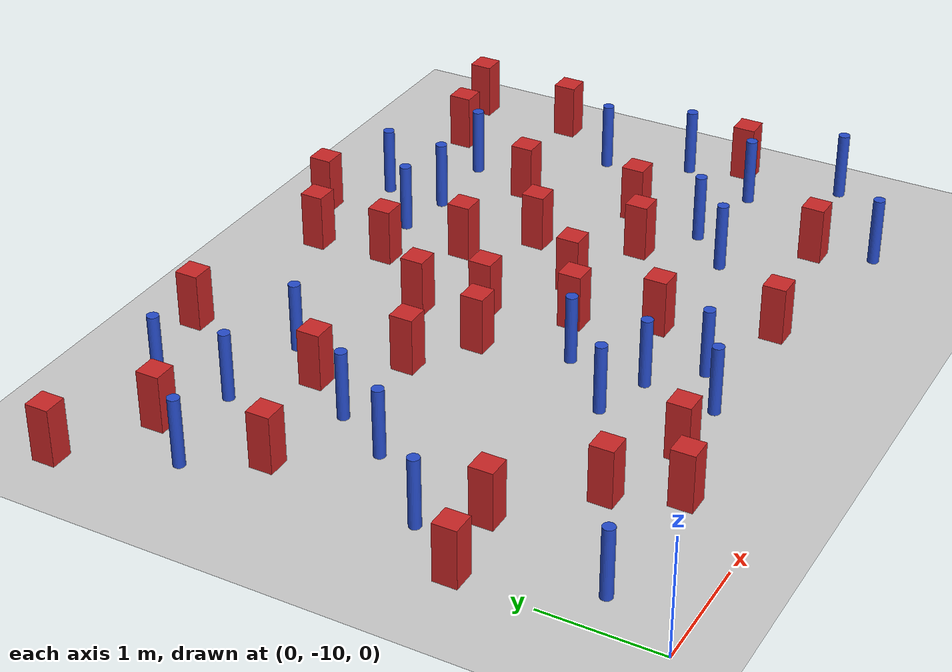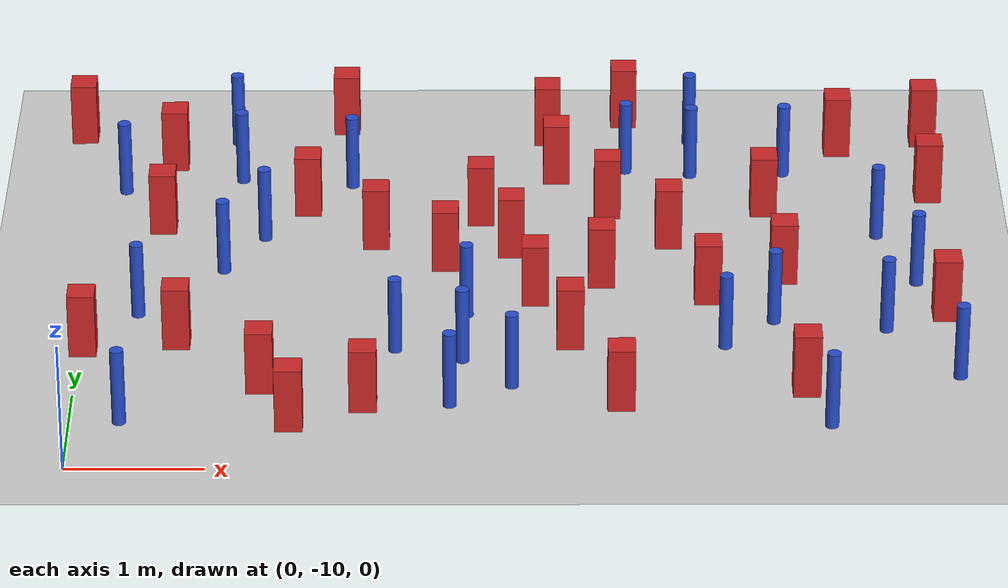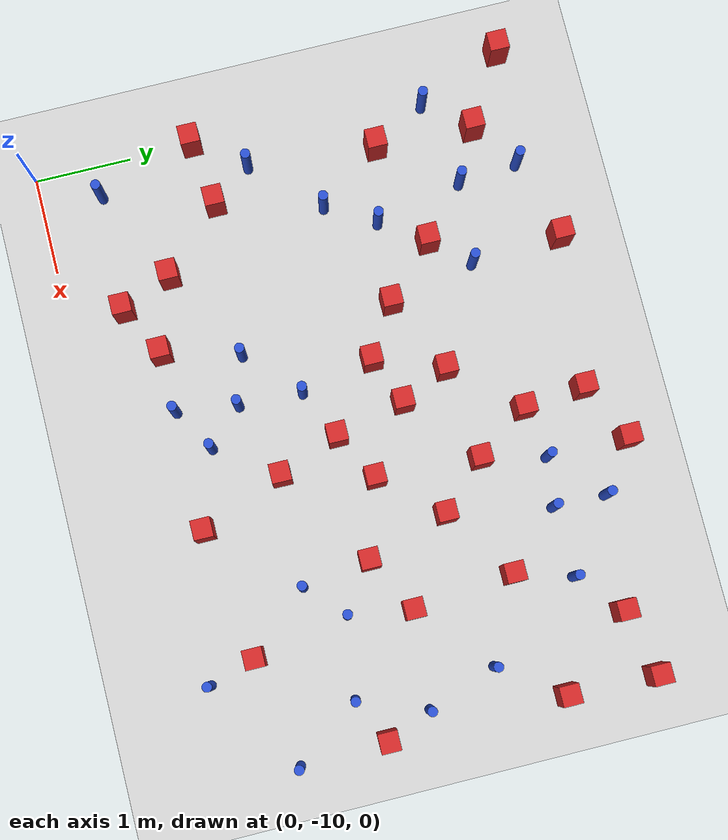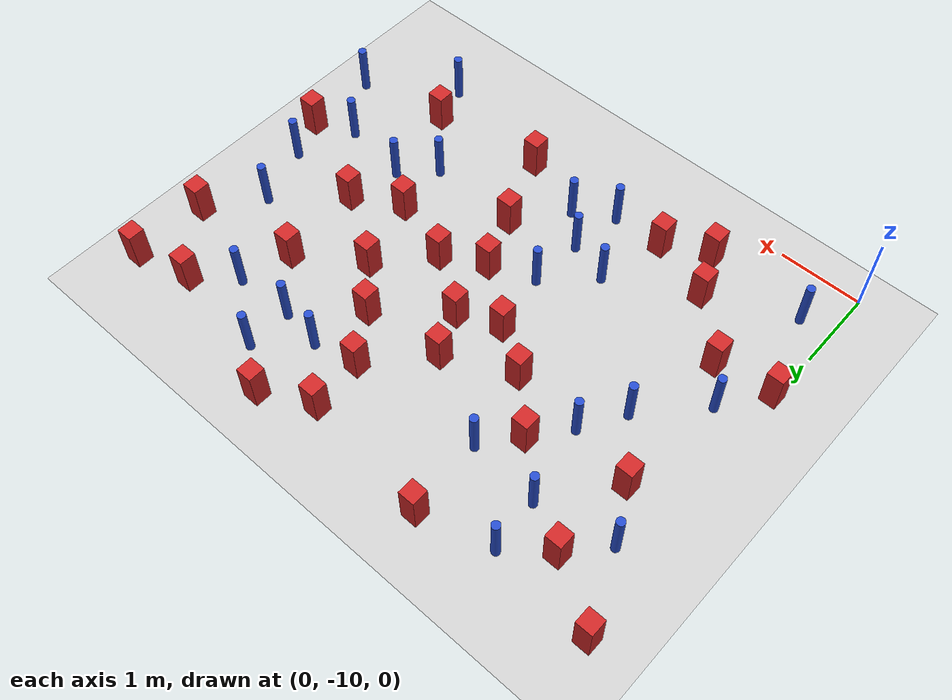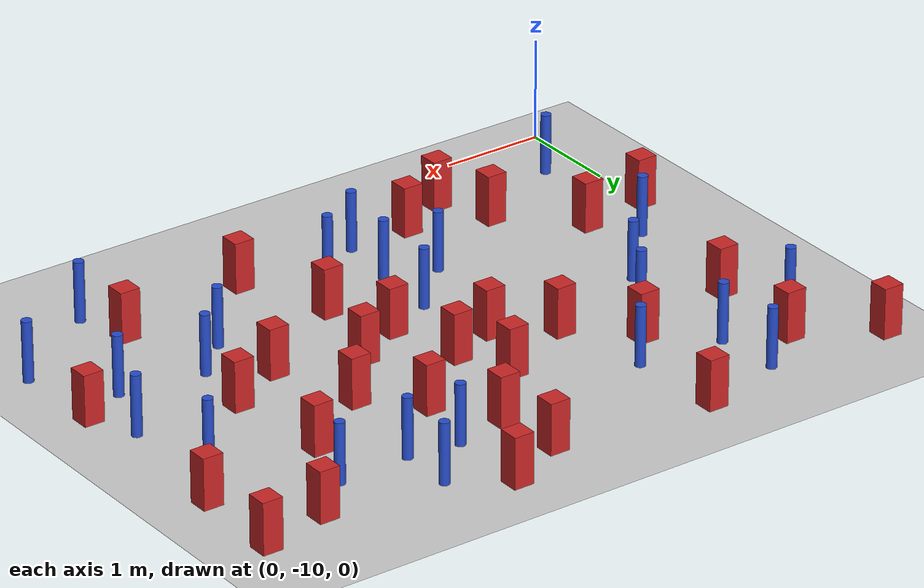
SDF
<sdf version="1.6">
 <world name="default">
  <model name="ground_plane">
   <static>1</static>
   <link name="link">
    <collision name="collision">
     <geometry><plane><normal>0 0 1</normal><size>100 100</size></plane></geometry>
     <surface><friction><ode><mu>100</mu><mu2>50</mu2></ode></friction></surface>
    </collision>
    <visual name="visual">
     <cast_shadows>0</cast_shadows>
     <geometry><plane><normal>0 0 1</normal><size>100 100</size></plane></geometry>
     <material>
      <ambient>1.0 1.0 1.0 1.0</ambient>
      <diffuse>0.8 0.8 0.8 1.0</diffuse>
      <specular>0.01 0.01 0.01 1.000000</specular>
     </material>
    </visual>
   </link>
  </model>
  <model name="pole_obstacle12">
   <static>true</static>
   <pose>5.93281669993 -8.06268216293 -9.47619616065e-06 5.49618799737e-07 2.36310414065e-07 -1.55090534796e-07</pose>
   <link name="link">
    <pose>0 0 0.3 0 -0 0</pose>
    <inertial>
     <mass>1</mass>
     <inertia><ixx>0.145833</ixx><ixy>0</ixy><ixz>0</ixz><iyy>0.145833</iyy><iyz>0</iyz><izz>0.125</izz></inertia>
    </inertial>
    <collision name="collision">
     <geometry><cylinder><radius>0.05</radius><length>.6</length></cylinder></geometry>
    </collision>
    <visual name="visual">
     <geometry><cylinder><radius>0.05</radius><length>.6</length></cylinder></geometry>
     <material>
      <script><name>Gazebo/Blue</name><uri>file://media/materials/scripts/gazebo.material</uri></script>
     </material>
    </visual>
   </link>
  </model>
  <model name="square_post_obstacle12">
   <static>true</static>
   <pose>5.20667892663 -7.29019739794 -6.11067671241e-07 -5.50515727128e-06 -8.79689657224e-07 2.37013304536e-05</pose>
   <link name="link">
    <pose>0 0 0.25 0 -0 0</pose>
    <inertial>
     <mass>100</mass>
     <inertia>
      <ixx>0.166667</ixx>
      <ixy>0</ixy>
      <ixz>0</ixz>
      <iyy>0.166667</iyy>
      <iyz>0</iyz>
      <izz>0.166667</izz>
     </inertia>
    </inertial>
    <collision name="collision"><geometry><box><size>.2 .2 .5</size></box></geometry></collision>
    <visual name="visual">
     <geometry><box><size>.2 .2 .5</size></box></geometry>
     <material>
      <script><name>Gazebo/Red</name><uri>file://media/materials/scripts/gazebo.material</uri></script>
     </material>
    </visual>
   </link>
  </model>
  <model name="pole_obstacle16">
   <static>true</static>
   <pose>2.720829693 -9.12816639796 -9.4761961606e-06 5.49618799729e-07 2.36310414e-07 -1.55090534824e-07</pose>
   <link name="link">
    <pose>0 0 0.3 0 -0 0</pose>
    <inertial>
     <mass>1</mass>
     <inertia><ixx>0.145833</ixx><ixy>0</ixy><ixz>0</ixz><iyy>0.145833</iyy><iyz>0</iyz><izz>0.125</izz></inertia>
    </inertial>
    <collision name="collision">
     <geometry><cylinder><radius>0.05</radius><length>.6</length></cylinder></geometry>
    </collision>
    <visual name="visual">
     <geometry><cylinder><radius>0.05</radius><length>.6</length></cylinder></geometry>
     <material>
      <script><name>Gazebo/Blue</name><uri>file://media/materials/scripts/gazebo.material</uri></script>
     </material>
    </visual>
   </link>
  </model>
  <model name="square_post_obstacle13">
   <static>true</static>
   <pose>5.71550709969 -5.27614604653 -6.11067671241e-07 -5.50515727128e-06 -8.79689657224e-07 2.37013304536e-05</pose>
   <link name="link">
    <pose>0 0 0.25 0 -0 0</pose>
    <inertial>
     <mass>100</mass>
     <inertia>
      <ixx>0.166667</ixx>
      <ixy>0</ixy>
      <ixz>0</ixz>
      <iyy>0.166667</iyy>
      <iyz>0</iyz>
      <izz>0.166667</izz>
     </inertia>
    </inertial>
    <collision name="collision"><geometry><box><size>.2 .2 .5</size></box></geometry></collision>
    <visual name="visual">
     <geometry><box><size>.2 .2 .5</size></box></geometry>
     <material>
      <script><name>Gazebo/Red</name><uri>file://media/materials/scripts/gazebo.material</uri></script>
     </material>
    </visual>
   </link>
  </model>
  <model name="square_post_obstacle17">
   <static>true</static>
   <pose>0.71277988846 -8.24891498872 -6.11067671241e-07 -5.50515727128e-06 -8.79689657224e-07 2.37013304536e-05</pose>
   <link name="link">
    <pose>0 0 0.25 0 -0 0</pose>
    <inertial>
     <mass>100</mass>
     <inertia>
      <ixx>0.166667</ixx>
      <ixy>0</ixy>
      <ixz>0</ixz>
      <iyy>0.166667</iyy>
      <iyz>0</iyz>
      <izz>0.166667</izz>
     </inertia>
    </inertial>
    <collision name="collision"><geometry><box><size>.2 .2 .5</size></box></geometry></collision>
    <visual name="visual">
     <geometry><box><size>.2 .2 .5</size></box></geometry>
     <material>
      <script><name>Gazebo/Red</name><uri>file://media/materials/scripts/gazebo.material</uri></script>
     </material>
    </visual>
   </link>
  </model>
  <model name="pole_obstacle21">
   <static>true</static>
   <pose>1.04038166597 -5.14257661858 -9.47619616065e-06 5.49618799737e-07 2.36310414059e-07 -1.550905348e-07</pose>
   <link name="link">
    <pose>0 0 0.3 0 -0 0</pose>
    <inertial>
     <mass>1</mass>
     <inertia><ixx>0.145833</ixx><ixy>0</ixy><ixz>0</ixz><iyy>0.145833</iyy><iyz>0</iyz><izz>0.125</izz></inertia>
    </inertial>
    <collision name="collision">
     <geometry><cylinder><radius>0.05</radius><length>.6</length></cylinder></geometry>
    </collision>
    <visual name="visual">
     <geometry><cylinder><radius>0.05</radius><length>.6</length></cylinder></geometry>
     <material>
      <script><name>Gazebo/Blue</name><uri>file://media/materials/scripts/gazebo.material</uri></script>
     </material>
    </visual>
   </link>
  </model>
  <model name="pole_obstacle22">
   <static>true</static>
   <pose>5.27804432764 -5.66045612122 -9.47619616065e-06 5.49618799737e-07 2.36310414037e-07 -1.55090534814e-07</pose>
   <link name="link">
    <pose>0 0 0.3 0 -0 0</pose>
    <inertial>
     <mass>1</mass>
     <inertia><ixx>0.145833</ixx><ixy>0</ixy><ixz>0</ixz><iyy>0.145833</iyy><iyz>0</iyz><izz>0.125</izz></inertia>
    </inertial>
    <collision name="collision">
     <geometry><cylinder><radius>0.05</radius><length>.6</length></cylinder></geometry>
    </collision>
    <visual name="visual">
     <geometry><cylinder><radius>0.05</radius><length>.6</length></cylinder></geometry>
     <material>
      <script><name>Gazebo/Blue</name><uri>file://media/materials/scripts/gazebo.material</uri></script>
     </material>
    </visual>
   </link>
  </model>
  <model name="pole_obstacle28">
   <static>true</static>
   <pose>2.83675193758 -7.84077240322 -9.47619616065e-06 5.49618799738e-07 2.3631041406e-07 -1.55090534801e-07</pose>
   <link name="link">
    <pose>0 0 0.3 0 -0 0</pose>
    <inertial>
     <mass>1</mass>
     <inertia><ixx>0.145833</ixx><ixy>0</ixy><ixz>0</ixz><iyy>0.145833</iyy><iyz>0</iyz><izz>0.125</izz></inertia>
    </inertial>
    <collision name="collision">
     <geometry><cylinder><radius>0.05</radius><length>.6</length></cylinder></geometry>
    </collision>
    <visual name="visual">
     <geometry><cylinder><radius>0.05</radius><length>.6</length></cylinder></geometry>
     <material>
      <script><name>Gazebo/Blue</name><uri>file://media/materials/scripts/gazebo.material</uri></script>
     </material>
    </visual>
   </link>
  </model>
  <model name="pole_obstacle29">
   <static>true</static>
   <pose>4.55896343753 -5.68509339686 -9.47619616065e-06 5.49618799737e-07 2.36310414037e-07 -1.55090534814e-07</pose>
   <link name="link">
    <pose>0 0 0.3 0 -0 0</pose>
    <inertial>
     <mass>1</mass>
     <inertia><ixx>0.145833</ixx><ixy>0</ixy><ixz>0</ixz><iyy>0.145833</iyy><iyz>0</iyz><izz>0.125</izz></inertia>
    </inertial>
    <collision name="collision">
     <geometry><cylinder><radius>0.05</radius><length>.6</length></cylinder></geometry>
    </collision>
    <visual name="visual">
     <geometry><cylinder><radius>0.05</radius><length>.6</length></cylinder></geometry>
     <material>
      <script><name>Gazebo/Blue</name><uri>file://media/materials/scripts/gazebo.material</uri></script>
     </material>
    </visual>
   </link>
  </model>
  <model name="square_post_obstacle21">
   <static>true</static>
   <pose>4.62950442919 -7.59702174267 -6.11067671241e-07 -5.50515727128e-06 -8.79689657224e-07 2.37013304536e-05</pose>
   <link name="link">
    <pose>0 0 0.25 0 -0 0</pose>
    <inertial>
     <mass>100</mass>
     <inertia>
      <ixx>0.166667</ixx>
      <ixy>0</ixy>
      <ixz>0</ixz>
      <iyy>0.166667</iyy>
      <iyz>0</iyz>
      <izz>0.166667</izz>
     </inertia>
    </inertial>
    <collision name="collision"><geometry><box><size>.2 .2 .5</size></box></geometry></collision>
    <visual name="visual">
     <geometry><box><size>.2 .2 .5</size></box></geometry>
     <material>
      <script><name>Gazebo/Red</name><uri>file://media/materials/scripts/gazebo.material</uri></script>
     </material>
    </visual>
   </link>
  </model>
  <model name="square_post_obstacle23">
   <static>true</static>
   <pose>2.93946021151 -6.38326841739 -6.11067671241e-07 -5.50515727128e-06 -8.79689657224e-07 2.37013304536e-05</pose>
   <link name="link">
    <pose>0 0 0.25 0 -0 0</pose>
    <inertial>
     <mass>100</mass>
     <inertia>
      <ixx>0.166667</ixx>
      <ixy>0</ixy>
      <ixz>0</ixz>
      <iyy>0.166667</iyy>
      <iyz>0</iyz>
      <izz>0.166667</izz>
     </inertia>
    </inertial>
    <collision name="collision"><geometry><box><size>.2 .2 .5</size></box></geometry></collision>
    <visual name="visual">
     <geometry><box><size>.2 .2 .5</size></box></geometry>
     <material>
      <script><name>Gazebo/Red</name><uri>file://media/materials/scripts/gazebo.material</uri></script>
     </material>
    </visual>
   </link>
  </model>
  <model name="square_post_obstacle25">
   <static>true</static>
   <pose>3.84279936179 -7.34249910296 -6.11067671241e-07 -5.50515727128e-06 -8.79689657224e-07 2.37013304536e-05</pose>
   <link name="link">
    <pose>0 0 0.25 0 -0 0</pose>
    <inertial>
     <mass>100</mass>
     <inertia>
      <ixx>0.166667</ixx>
      <ixy>0</ixy>
      <ixz>0</ixz>
      <iyy>0.166667</iyy>
      <iyz>0</iyz>
      <izz>0.166667</izz>
     </inertia>
    </inertial>
    <collision name="collision"><geometry><box><size>.2 .2 .5</size></box></geometry></collision>
    <visual name="visual">
     <geometry><box><size>.2 .2 .5</size></box></geometry>
     <material>
      <script><name>Gazebo/Red</name><uri>file://media/materials/scripts/gazebo.material</uri></script>
     </material>
    </visual>
   </link>
  </model>
  <model name="pole_obstacle42">
   <static>true</static>
   <pose>6.42633788619 -8.73967846115 -9.47619616065e-06 5.49618799737e-07 2.36310414065e-07 -1.55090534796e-07</pose>
   <link name="link">
    <pose>0 0 0.3 0 -0 0</pose>
    <inertial>
     <mass>1</mass>
     <inertia><ixx>0.145833</ixx><ixy>0</ixy><ixz>0</ixz><iyy>0.145833</iyy><iyz>0</iyz><izz>0.125</izz></inertia>
    </inertial>
    <collision name="collision">
     <geometry><cylinder><radius>0.05</radius><length>.6</length></cylinder></geometry>
    </collision>
    <visual name="visual">
     <geometry><cylinder><radius>0.05</radius><length>.6</length></cylinder></geometry>
     <material>
      <script><name>Gazebo/Blue</name><uri>file://media/materials/scripts/gazebo.material</uri></script>
     </material>
    </visual>
   </link>
  </model>
  <model name="square_post_obstacle31">
   <static>true</static>
   <pose>5.29744266156 -8.92655233436 -6.11067671241e-07 -5.50515727128e-06 -8.79689657224e-07 2.37013304536e-05</pose>
   <link name="link">
    <pose>0 0 0.25 0 -0 0</pose>
    <inertial>
     <mass>100</mass>
     <inertia>
      <ixx>0.166667</ixx>
      <ixy>0</ixy>
      <ixz>0</ixz>
      <iyy>0.166667</iyy>
      <iyz>0</iyz>
      <izz>0.166667</izz>
     </inertia>
    </inertial>
    <collision name="collision"><geometry><box><size>.2 .2 .5</size></box></geometry></collision>
    <visual name="visual">
     <geometry><box><size>.2 .2 .5</size></box></geometry>
     <material>
      <script><name>Gazebo/Red</name><uri>file://media/materials/scripts/gazebo.material</uri></script>
     </material>
    </visual>
   </link>
  </model>
  <model name="pole_obstacle49">
   <static>true</static>
   <pose>5.94414376201 -6.6505193736 -9.47619616065e-06 5.49618799737e-07 2.36310414037e-07 -1.55090534814e-07</pose>
   <link name="link">
    <pose>0 0 0.3 0 -0 0</pose>
    <inertial>
     <mass>1</mass>
     <inertia><ixx>0.145833</ixx><ixy>0</ixy><ixz>0</ixz><iyy>0.145833</iyy><iyz>0</iyz><izz>0.125</izz></inertia>
    </inertial>
    <collision name="collision">
     <geometry><cylinder><radius>0.05</radius><length>.6</length></cylinder></geometry>
    </collision>
    <visual name="visual">
     <geometry><cylinder><radius>0.05</radius><length>.6</length></cylinder></geometry>
     <material>
      <script><name>Gazebo/Blue</name><uri>file://media/materials/scripts/gazebo.material</uri></script>
     </material>
    </visual>
   </link>
  </model>
  <model name="square_post_obstacle64">
   <static>true</static>
   <pose>-0.167867281966 -5.04920808714 -6.11067671241e-07 -5.50515727128e-06 -8.79689657224e-07 2.37013304536e-05</pose>
   <link name="link">
    <pose>0 0 0.25 0 -0 0</pose>
    <inertial>
     <mass>100</mass>
     <inertia>
      <ixx>0.166667</ixx>
      <ixy>0</ixy>
      <ixz>0</ixz>
      <iyy>0.166667</iyy>
      <iyz>0</iyz>
      <izz>0.166667</izz>
     </inertia>
    </inertial>
    <collision name="collision"><geometry><box><size>.2 .2 .5</size></box></geometry></collision>
    <visual name="visual">
     <geometry><box><size>.2 .2 .5</size></box></geometry>
     <material>
      <script><name>Gazebo/Red</name><uri>file://media/materials/scripts/gazebo.material</uri></script>
     </material>
    </visual>
   </link>
  </model>
  <model name="pole_obstacle77">
   <static>true</static>
   <pose>1.30455774647 -6.67680093777 -9.47619616065e-06 5.49618799737e-07 2.36310414061e-07 -1.550905348e-07</pose>
   <link name="link">
    <pose>0 0 0.3 0 -0 0</pose>
    <inertial>
     <mass>1</mass>
     <inertia><ixx>0.145833</ixx><ixy>0</ixy><ixz>0</ixz><iyy>0.145833</iyy><iyz>0</iyz><izz>0.125</izz></inertia>
    </inertial>
    <collision name="collision">
     <geometry><cylinder><radius>0.05</radius><length>.6</length></cylinder></geometry>
    </collision>
    <visual name="visual">
     <geometry><cylinder><radius>0.05</radius><length>.6</length></cylinder></geometry>
     <material>
      <script><name>Gazebo/Blue</name><uri>file://media/materials/scripts/gazebo.material</uri></script>
     </material>
    </visual>
   </link>
  </model>
  <model name="pole_obstacle79">
   <static>true</static>
   <pose>2.80960580099 -8.49916377541 -9.4761961606e-06 5.49618799729e-07 2.36310414e-07 -1.55090534824e-07</pose>
   <link name="link">
    <pose>0 0 0.3 0 -0 0</pose>
    <inertial>
     <mass>1</mass>
     <inertia><ixx>0.145833</ixx><ixy>0</ixy><ixz>0</ixz><iyy>0.145833</iyy><iyz>0</iyz><izz>0.125</izz></inertia>
    </inertial>
    <collision name="collision">
     <geometry><cylinder><radius>0.05</radius><length>.6</length></cylinder></geometry>
    </collision>
    <visual name="visual">
     <geometry><cylinder><radius>0.05</radius><length>.6</length></cylinder></geometry>
     <material>
      <script><name>Gazebo/Blue</name><uri>file://media/materials/scripts/gazebo.material</uri></script>
     </material>
    </visual>
   </link>
  </model>
  <model name="square_post_obstacle68">
   <static>true</static>
   <pose>3.5210242254 -5.72274346135 -6.11067671241e-07 -5.50515727128e-06 -8.79689657224e-07 2.37013304536e-05</pose>
   <link name="link">
    <pose>0 0 0.25 0 -0 0</pose>
    <inertial>
     <mass>100</mass>
     <inertia>
      <ixx>0.166667</ixx>
      <ixy>0</ixy>
      <ixz>0</ixz>
      <iyy>0.166667</iyy>
      <iyz>0</iyz>
      <izz>0.166667</izz>
     </inertia>
    </inertial>
    <collision name="collision"><geometry><box><size>.2 .2 .5</size></box></geometry></collision>
    <visual name="visual">
     <geometry><box><size>.2 .2 .5</size></box></geometry>
     <material>
      <script><name>Gazebo/Red</name><uri>file://media/materials/scripts/gazebo.material</uri></script>
     </material>
    </visual>
   </link>
  </model>
  <model name="square_post_obstacle69">
   <static>true</static>
   <pose>2.67509893249 -7.08658786884 -6.11067671241e-07 -5.50515727128e-06 -8.79689657224e-07 2.37013304536e-05</pose>
   <link name="link">
    <pose>0 0 0.25 0 -0 0</pose>
    <inertial>
     <mass>100</mass>
     <inertia>
      <ixx>0.166667</ixx>
      <ixy>0</ixy>
      <ixz>0</ixz>
      <iyy>0.166667</iyy>
      <iyz>0</iyz>
      <izz>0.166667</izz>
     </inertia>
    </inertial>
    <collision name="collision"><geometry><box><size>.2 .2 .5</size></box></geometry></collision>
    <visual name="visual">
     <geometry><box><size>.2 .2 .5</size></box></geometry>
     <material>
      <script><name>Gazebo/Red</name><uri>file://media/materials/scripts/gazebo.material</uri></script>
     </material>
    </visual>
   </link>
  </model>
  <model name="square_post_obstacle71">
   <static>true</static>
   <pose>3.95427747895 -9.12383704508 -6.11067671241e-07 -5.50515727128e-06 -8.79689657224e-07 2.37013304536e-05</pose>
   <link name="link">
    <pose>0 0 0.25 0 -0 0</pose>
    <inertial>
     <mass>100</mass>
     <inertia>
      <ixx>0.166667</ixx>
      <ixy>0</ixy>
      <ixz>0</ixz>
      <iyy>0.166667</iyy>
      <iyz>0</iyz>
      <izz>0.166667</izz>
     </inertia>
    </inertial>
    <collision name="collision"><geometry><box><size>.2 .2 .5</size></box></geometry></collision>
    <visual name="visual">
     <geometry><box><size>.2 .2 .5</size></box></geometry>
     <material>
      <script><name>Gazebo/Red</name><uri>file://media/materials/scripts/gazebo.material</uri></script>
     </material>
    </visual>
   </link>
  </model>
  <model name="pole_obstacle83">
   <static>true</static>
   <pose>5.45472518656 -9.41509939792 -9.47619616065e-06 5.49618799737e-07 2.36310414065e-07 -1.55090534796e-07</pose>
   <link name="link">
    <pose>0 0 0.3 0 -0 0</pose>
    <inertial>
     <mass>1</mass>
     <inertia><ixx>0.145833</ixx><ixy>0</ixy><ixz>0</ixz><iyy>0.145833</iyy><iyz>0</iyz><izz>0.125</izz></inertia>
    </inertial>
    <collision name="collision">
     <geometry><cylinder><radius>0.05</radius><length>.6</length></cylinder></geometry>
    </collision>
    <visual name="visual">
     <geometry><cylinder><radius>0.05</radius><length>.6</length></cylinder></geometry>
     <material>
      <script><name>Gazebo/Blue</name><uri>file://media/materials/scripts/gazebo.material</uri></script>
     </material>
    </visual>
   </link>
  </model>
  <model name="pole_obstacle84">
   <static>true</static>
   <pose>1.94964343044 -5.8425881173 -9.47619616065e-06 5.49618799737e-07 2.36310414061e-07 -1.550905348e-07</pose>
   <link name="link">
    <pose>0 0 0.3 0 -0 0</pose>
    <inertial>
     <mass>1</mass>
     <inertia><ixx>0.145833</ixx><ixy>0</ixy><ixz>0</ixz><iyy>0.145833</iyy><iyz>0</iyz><izz>0.125</izz></inertia>
    </inertial>
    <collision name="collision">
     <geometry><cylinder><radius>0.05</radius><length>.6</length></cylinder></geometry>
    </collision>
    <visual name="visual">
     <geometry><cylinder><radius>0.05</radius><length>.6</length></cylinder></geometry>
     <material>
      <script><name>Gazebo/Blue</name><uri>file://media/materials/scripts/gazebo.material</uri></script>
     </material>
    </visual>
   </link>
  </model>
  <model name="pole_obstacle85">
   <static>true</static>
   <pose>4.56542222274 -5.14206042272 -9.47619616065e-06 5.49618799737e-07 2.36310414037e-07 -1.55090534814e-07</pose>
   <link name="link">
    <pose>0 0 0.3 0 -0 0</pose>
    <inertial>
     <mass>1</mass>
     <inertia><ixx>0.145833</ixx><ixy>0</ixy><ixz>0</ixz><iyy>0.145833</iyy><iyz>0</iyz><izz>0.125</izz></inertia>
    </inertial>
    <collision name="collision">
     <geometry><cylinder><radius>0.05</radius><length>.6</length></cylinder></geometry>
    </collision>
    <visual name="visual">
     <geometry><cylinder><radius>0.05</radius><length>.6</length></cylinder></geometry>
     <material>
      <script><name>Gazebo/Blue</name><uri>file://media/materials/scripts/gazebo.material</uri></script>
     </material>
    </visual>
   </link>
  </model>
  <model name="square_post_obstacle74">
   <static>true</static>
   <pose>3.16929546181 -6.8870300143 -6.11067671241e-07 -5.50515727128e-06 -8.79689657224e-07 2.37013304536e-05</pose>
   <link name="link">
    <pose>0 0 0.25 0 -0 0</pose>
    <inertial>
     <mass>100</mass>
     <inertia>
      <ixx>0.166667</ixx>
      <ixy>0</ixy>
      <ixz>0</ixz>
      <iyy>0.166667</iyy>
      <iyz>0</iyz>
      <izz>0.166667</izz>
     </inertia>
    </inertial>
    <collision name="collision"><geometry><box><size>.2 .2 .5</size></box></geometry></collision>
    <visual name="visual">
     <geometry><box><size>.2 .2 .5</size></box></geometry>
     <material>
      <script><name>Gazebo/Red</name><uri>file://media/materials/scripts/gazebo.material</uri></script>
     </material>
    </visual>
   </link>
  </model>
  <model name="square_post_obstacle77">
   <static>true</static>
   <pose>5.10005069878 -6.24870577223 -6.11067671241e-07 -5.50515727128e-06 -8.79689657224e-07 2.37013304536e-05</pose>
   <link name="link">
    <pose>0 0 0.25 0 -0 0</pose>
    <inertial>
     <mass>100</mass>
     <inertia>
      <ixx>0.166667</ixx>
      <ixy>0</ixy>
      <ixz>0</ixz>
      <iyy>0.166667</iyy>
      <iyz>0</iyz>
      <izz>0.166667</izz>
     </inertia>
    </inertial>
    <collision name="collision"><geometry><box><size>.2 .2 .5</size></box></geometry></collision>
    <visual name="visual">
     <geometry><box><size>.2 .2 .5</size></box></geometry>
     <material>
      <script><name>Gazebo/Red</name><uri>file://media/materials/scripts/gazebo.material</uri></script>
     </material>
    </visual>
   </link>
  </model>
  <model name="square_post_obstacle78">
   <static>true</static>
   <pose>6.39688557485 -5.12096300864 -6.11067671241e-07 -5.50515727128e-06 -8.79689657224e-07 2.37013304536e-05</pose>
   <link name="link">
    <pose>0 0 0.25 0 -0 0</pose>
    <inertial>
     <mass>100</mass>
     <inertia>
      <ixx>0.166667</ixx>
      <ixy>0</ixy>
      <ixz>0</ixz>
      <iyy>0.166667</iyy>
      <iyz>0</iyz>
      <izz>0.166667</izz>
     </inertia>
    </inertial>
    <collision name="collision"><geometry><box><size>.2 .2 .5</size></box></geometry></collision>
    <visual name="visual">
     <geometry><box><size>.2 .2 .5</size></box></geometry>
     <material>
      <script><name>Gazebo/Red</name><uri>file://media/materials/scripts/gazebo.material</uri></script>
     </material>
    </visual>
   </link>
  </model>
  <model name="square_post_obstacle90">
   <static>true</static>
   <pose>0.0329092696904 -8.3432242406 -6.11067671241e-07 -5.50515727128e-06 -8.79689657224e-07 2.37013304536e-05</pose>
   <link name="link">
    <pose>0 0 0.25 0 -0 0</pose>
    <inertial>
     <mass>100</mass>
     <inertia>
      <ixx>0.166667</ixx>
      <ixy>0</ixy>
      <ixz>0</ixz>
      <iyy>0.166667</iyy>
      <iyz>0</iyz>
      <izz>0.166667</izz>
     </inertia>
    </inertial>
    <collision name="collision"><geometry><box><size>.2 .2 .5</size></box></geometry></collision>
    <visual name="visual">
     <geometry><box><size>.2 .2 .5</size></box></geometry>
     <material>
      <script><name>Gazebo/Red</name><uri>file://media/materials/scripts/gazebo.material</uri></script>
     </material>
    </visual>
   </link>
  </model>
  <model name="square_post_obstacle97">
   <static>true</static>
   <pose>0.525384420493 -6.50785885668 -6.11067671241e-07 -5.50515727128e-06 -8.79689657224e-07 2.37013304536e-05</pose>
   <link name="link">
    <pose>0 0 0.25 0 -0 0</pose>
    <inertial>
     <mass>100</mass>
     <inertia>
      <ixx>0.166667</ixx>
      <ixy>0</ixy>
      <ixz>0</ixz>
      <iyy>0.166667</iyy>
      <iyz>0</iyz>
      <izz>0.166667</izz>
     </inertia>
    </inertial>
    <collision name="collision"><geometry><box><size>.2 .2 .5</size></box></geometry></collision>
    <visual name="visual">
     <geometry><box><size>.2 .2 .5</size></box></geometry>
     <material>
      <script><name>Gazebo/Red</name><uri>file://media/materials/scripts/gazebo.material</uri></script>
     </material>
    </visual>
   </link>
  </model>
  <model name="square_post_obstacle100">
   <static>true</static>
   <pose>3.59843075839 -8.24982943547 -6.11067671241e-07 -5.50515727128e-06 -8.79689657224e-07 2.37013304536e-05</pose>
   <link name="link">
    <pose>0 0 0.25 0 -0 0</pose>
    <inertial>
     <mass>100</mass>
     <inertia>
      <ixx>0.166667</ixx>
      <ixy>0</ixy>
      <ixz>0</ixz>
      <iyy>0.166667</iyy>
      <iyz>0</iyz>
      <izz>0.166667</izz>
     </inertia>
    </inertial>
    <collision name="collision"><geometry><box><size>.2 .2 .5</size></box></geometry></collision>
    <visual name="visual">
     <geometry><box><size>.2 .2 .5</size></box></geometry>
     <material>
      <script><name>Gazebo/Red</name><uri>file://media/materials/scripts/gazebo.material</uri></script>
     </material>
    </visual>
   </link>
  </model>
  <model name="pole_obstacle121">
   <static>true</static>
   <pose>3.16852493648 -8.86113924173 -9.4761961606e-06 5.49618799729e-07 2.36310414e-07 -1.55090534824e-07</pose>
   <link name="link">
    <pose>0 0 0.3 0 -0 0</pose>
    <inertial>
     <mass>1</mass>
     <inertia><ixx>0.145833</ixx><ixy>0</ixy><ixz>0</ixz><iyy>0.145833</iyy><iyz>0</iyz><izz>0.125</izz></inertia>
    </inertial>
    <collision name="collision">
     <geometry><cylinder><radius>0.05</radius><length>.6</length></cylinder></geometry>
    </collision>
    <visual name="visual">
     <geometry><cylinder><radius>0.05</radius><length>.6</length></cylinder></geometry>
     <material>
      <script><name>Gazebo/Blue</name><uri>file://media/materials/scripts/gazebo.material</uri></script>
     </material>
    </visual>
   </link>
  </model>
  <model name="square_post_obstacle127">
   <static>true</static>
   <pose>2.09717497922 -9.13430235939 -6.11067671241e-07 -5.50515727128e-06 -8.79689657224e-07 2.37013304536e-05</pose>
   <link name="link">
    <pose>0 0 0.25 0 -0 0</pose>
    <inertial>
     <mass>100</mass>
     <inertia>
      <ixx>0.166667</ixx>
      <ixy>0</ixy>
      <ixz>0</ixz>
      <iyy>0.166667</iyy>
      <iyz>0</iyz>
      <izz>0.166667</izz>
     </inertia>
    </inertial>
    <collision name="collision"><geometry><box><size>.2 .2 .5</size></box></geometry></collision>
    <visual name="visual">
     <geometry><box><size>.2 .2 .5</size></box></geometry>
     <material>
      <script><name>Gazebo/Red</name><uri>file://media/materials/scripts/gazebo.material</uri></script>
     </material>
    </visual>
   </link>
  </model>
  <model name="square_post_obstacle130">
   <static>true</static>
   <pose>1.34570061338 -8.8744989437 -6.11067671241e-07 -5.50515727128e-06 -8.79689657224e-07 2.37013304536e-05</pose>
   <link name="link">
    <pose>0 0 0.25 0 -0 0</pose>
    <inertial>
     <mass>100</mass>
     <inertia>
      <ixx>0.166667</ixx>
      <ixy>0</ixy>
      <ixz>0</ixz>
      <iyy>0.166667</iyy>
      <iyz>0</iyz>
      <izz>0.166667</izz>
     </inertia>
    </inertial>
    <collision name="collision"><geometry><box><size>.2 .2 .5</size></box></geometry></collision>
    <visual name="visual">
     <geometry><box><size>.2 .2 .5</size></box></geometry>
     <material>
      <script><name>Gazebo/Red</name><uri>file://media/materials/scripts/gazebo.material</uri></script>
     </material>
    </visual>
   </link>
  </model>
  <model name="pole_obstacle133">
   <static>true</static>
   <pose>0.357211621863 -9.36256699731 -9.47619616065e-06 5.49618799737e-07 2.36310414031e-07 -1.55090534818e-07</pose>
   <link name="link">
    <pose>0 0 0.3 0 -0 0</pose>
    <inertial>
     <mass>1</mass>
     <inertia><ixx>0.145833</ixx><ixy>0</ixy><ixz>0</ixz><iyy>0.145833</iyy><iyz>0</iyz><izz>0.125</izz></inertia>
    </inertial>
    <collision name="collision">
     <geometry><cylinder><radius>0.05</radius><length>.6</length></cylinder></geometry>
    </collision>
    <visual name="visual">
     <geometry><cylinder><radius>0.05</radius><length>.6</length></cylinder></geometry>
     <material>
      <script><name>Gazebo/Blue</name><uri>file://media/materials/scripts/gazebo.material</uri></script>
     </material>
    </visual>
   </link>
  </model>
  <model name="pole_obstacle136">
   <static>true</static>
   <pose>0.204394022643 -5.93883474323 -9.47619616065e-06 5.49618799737e-07 2.36310414069e-07 -1.55090534795e-07</pose>
   <link name="link">
    <pose>0 0 0.3 0 -0 0</pose>
    <inertial>
     <mass>1</mass>
     <inertia><ixx>0.145833</ixx><ixy>0</ixy><ixz>0</ixz><iyy>0.145833</iyy><iyz>0</iyz><izz>0.125</izz></inertia>
    </inertial>
    <collision name="collision">
     <geometry><cylinder><radius>0.05</radius><length>.6</length></cylinder></geometry>
    </collision>
    <visual name="visual">
     <geometry><cylinder><radius>0.05</radius><length>.6</length></cylinder></geometry>
     <material>
      <script><name>Gazebo/Blue</name><uri>file://media/materials/scripts/gazebo.material</uri></script>
     </material>
    </visual>
   </link>
  </model>
  <model name="pole_obstacle139">
   <static>true</static>
   <pose>1.09948052902 -5.76245432606 -9.47619616065e-06 5.49618799737e-07 2.36310414061e-07 -1.550905348e-07</pose>
   <link name="link">
    <pose>0 0 0.3 0 -0 0</pose>
    <inertial>
     <mass>1</mass>
     <inertia><ixx>0.145833</ixx><ixy>0</ixy><ixz>0</ixz><iyy>0.145833</iyy><iyz>0</iyz><izz>0.125</izz></inertia>
    </inertial>
    <collision name="collision">
     <geometry><cylinder><radius>0.05</radius><length>.6</length></cylinder></geometry>
    </collision>
    <visual name="visual">
     <geometry><cylinder><radius>0.05</radius><length>.6</length></cylinder></geometry>
     <material>
      <script><name>Gazebo/Blue</name><uri>file://media/materials/scripts/gazebo.material</uri></script>
     </material>
    </visual>
   </link>
  </model>
  <model name="pole_obstacle143">
   <static>true</static>
   <pose>0.406221420843 -7.83316427109 -9.47619616065e-06 5.49618799737e-07 2.36310414065e-07 -1.55090534796e-07</pose>
   <link name="link">
    <pose>0 0 0.3 0 -0 0</pose>
    <inertial>
     <mass>1</mass>
     <inertia><ixx>0.145833</ixx><ixy>0</ixy><ixz>0</ixz><iyy>0.145833</iyy><iyz>0</iyz><izz>0.125</izz></inertia>
    </inertial>
    <collision name="collision">
     <geometry><cylinder><radius>0.05</radius><length>.6</length></cylinder></geometry>
    </collision>
    <visual name="visual">
     <geometry><cylinder><radius>0.05</radius><length>.6</length></cylinder></geometry>
     <material>
      <script><name>Gazebo/Blue</name><uri>file://media/materials/scripts/gazebo.material</uri></script>
     </material>
    </visual>
   </link>
  </model>
  <model name="pole_obstacle147">
   <static>true</static>
   <pose>4.73493850237 -8.3010017767 -9.47619616065e-06 5.49618799737e-07 2.36310414065e-07 -1.55090534796e-07</pose>
   <link name="link">
    <pose>0 0 0.3 0 -0 0</pose>
    <inertial>
     <mass>1</mass>
     <inertia><ixx>0.145833</ixx><ixy>0</ixy><ixz>0</ixz><iyy>0.145833</iyy><iyz>0</iyz><izz>0.125</izz></inertia>
    </inertial>
    <collision name="collision">
     <geometry><cylinder><radius>0.05</radius><length>.6</length></cylinder></geometry>
    </collision>
    <visual name="visual">
     <geometry><cylinder><radius>0.05</radius><length>.6</length></cylinder></geometry>
     <material>
      <script><name>Gazebo/Blue</name><uri>file://media/materials/scripts/gazebo.material</uri></script>
     </material>
    </visual>
   </link>
  </model>
  <model name="square_post_obstacle147">
   <static>true</static>
   <pose>3.34500143807 -7.61101806555 -6.11067671241e-07 -5.50515727128e-06 -8.79689657224e-07 2.37013304536e-05</pose>
   <link name="link">
    <pose>0 0 0.25 0 -0 0</pose>
    <inertial>
     <mass>100</mass>
     <inertia>
      <ixx>0.166667</ixx>
      <ixy>0</ixy>
      <ixz>0</ixz>
      <iyy>0.166667</iyy>
      <iyz>0</iyz>
      <izz>0.166667</izz>
     </inertia>
    </inertial>
    <collision name="collision"><geometry><box><size>.2 .2 .5</size></box></geometry></collision>
    <visual name="visual">
     <geometry><box><size>.2 .2 .5</size></box></geometry>
     <material>
      <script><name>Gazebo/Red</name><uri>file://media/materials/scripts/gazebo.material</uri></script>
     </material>
    </visual>
   </link>
  </model>
  <model name="square_post_obstacle149">
   <static>true</static>
   <pose>3.90545622597 -6.27494212339 -6.11067671241e-07 -5.50515727128e-06 -8.79689657224e-07 2.37013304536e-05</pose>
   <link name="link">
    <pose>0 0 0.25 0 -0 0</pose>
    <inertial>
     <mass>100</mass>
     <inertia>
      <ixx>0.166667</ixx>
      <ixy>0</ixy>
      <ixz>0</ixz>
      <iyy>0.166667</iyy>
      <iyz>0</iyz>
      <izz>0.166667</izz>
     </inertia>
    </inertial>
    <collision name="collision"><geometry><box><size>.2 .2 .5</size></box></geometry></collision>
    <visual name="visual">
     <geometry><box><size>.2 .2 .5</size></box></geometry>
     <material>
      <script><name>Gazebo/Red</name><uri>file://media/materials/scripts/gazebo.material</uri></script>
     </material>
    </visual>
   </link>
  </model>
  <model name="pole_obstacle158">
   <static>true</static>
   <pose>6.19972009492 -7.37102440738 -9.47619616065e-06 5.49618799737e-07 2.36310414037e-07 -1.55090534814e-07</pose>
   <link name="link">
    <pose>0 0 0.3 0 -0 0</pose>
    <inertial>
     <mass>1</mass>
     <inertia><ixx>0.145833</ixx><ixy>0</ixy><ixz>0</ixz><iyy>0.145833</iyy><iyz>0</iyz><izz>0.125</izz></inertia>
    </inertial>
    <collision name="collision">
     <geometry><cylinder><radius>0.05</radius><length>.6</length></cylinder></geometry>
    </collision>
    <visual name="visual">
     <geometry><cylinder><radius>0.05</radius><length>.6</length></cylinder></geometry>
     <material>
      <script><name>Gazebo/Blue</name><uri>file://media/materials/scripts/gazebo.material</uri></script>
     </material>
    </visual>
   </link>
  </model>
  <model name="square_post_obstacle156">
   <static>true</static>
   <pose>2.1485260849 -6.74976451197 -6.11067671241e-07 -5.50515727128e-06 -8.79689657224e-07 2.37013304536e-05</pose>
   <link name="link">
    <pose>0 0 0.25 0 -0 0</pose>
    <inertial>
     <mass>100</mass>
     <inertia>
      <ixx>0.166667</ixx>
      <ixy>0</ixy>
      <ixz>0</ixz>
      <iyy>0.166667</iyy>
      <iyz>0</iyz>
      <izz>0.166667</izz>
     </inertia>
    </inertial>
    <collision name="collision"><geometry><box><size>.2 .2 .5</size></box></geometry></collision>
    <visual name="visual">
     <geometry><box><size>.2 .2 .5</size></box></geometry>
     <material>
      <script><name>Gazebo/Red</name><uri>file://media/materials/scripts/gazebo.material</uri></script>
     </material>
    </visual>
   </link>
  </model>
  <model name="square_post_obstacle161">
   <static>true</static>
   <pose>0.566592438559 -5.49720873082 -6.11067671241e-07 -5.50515727128e-06 -8.79689657224e-07 2.37013304536e-05</pose>
   <link name="link">
    <pose>0 0 0.25 0 -0 0</pose>
    <inertial>
     <mass>100</mass>
     <inertia>
      <ixx>0.166667</ixx>
      <ixy>0</ixy>
      <ixz>0</ixz>
      <iyy>0.166667</iyy>
      <iyz>0</iyz>
      <izz>0.166667</izz>
     </inertia>
    </inertial>
    <collision name="collision"><geometry><box><size>.2 .2 .5</size></box></geometry></collision>
    <visual name="visual">
     <geometry><box><size>.2 .2 .5</size></box></geometry>
     <material>
      <script><name>Gazebo/Red</name><uri>file://media/materials/scripts/gazebo.material</uri></script>
     </material>
    </visual>
   </link>
  </model>
  <model name="pole_obstacle175">
   <static>true</static>
   <pose>1.0126889612 -7.1760288264 -9.47619616065e-06 5.49618799737e-07 2.36310414059e-07 -1.550905348e-07</pose>
   <link name="link">
    <pose>0 0 0.3 0 -0 0</pose>
    <inertial>
     <mass>1</mass>
     <inertia><ixx>0.145833</ixx><ixy>0</ixy><ixz>0</ixz><iyy>0.145833</iyy><iyz>0</iyz><izz>0.125</izz></inertia>
    </inertial>
    <collision name="collision">
     <geometry><cylinder><radius>0.05</radius><length>.6</length></cylinder></geometry>
    </collision>
    <visual name="visual">
     <geometry><cylinder><radius>0.05</radius><length>.6</length></cylinder></geometry>
     <material>
      <script><name>Gazebo/Blue</name><uri>file://media/materials/scripts/gazebo.material</uri></script>
     </material>
    </visual>
   </link>
  </model>
  <model name="pole_obstacle180">
   <static>true</static>
   <pose>5.10807671601 -7.93797199988 -9.47619616065e-06 5.49618799737e-07 2.36310414037e-07 -1.55090534814e-07</pose>
   <link name="link">
    <pose>0 0 0.3 0 -0 0</pose>
    <inertial>
     <mass>1</mass>
     <inertia><ixx>0.145833</ixx><ixy>0</ixy><ixz>0</ixz><iyy>0.145833</iyy><iyz>0</iyz><izz>0.125</izz></inertia>
    </inertial>
    <collision name="collision">
     <geometry><cylinder><radius>0.05</radius><length>.6</length></cylinder></geometry>
    </collision>
    <visual name="visual">
     <geometry><cylinder><radius>0.05</radius><length>.6</length></cylinder></geometry>
     <material>
      <script><name>Gazebo/Blue</name><uri>file://media/materials/scripts/gazebo.material</uri></script>
     </material>
    </visual>
   </link>
  </model>
  <model name="pole_obstacle182">
   <static>true</static>
   <pose>4.05716123802 -5.61371453975 -9.47619616065e-06 5.49618799737e-07 2.36310414037e-07 -1.55090534814e-07</pose>
   <link name="link">
    <pose>0 0 0.3 0 -0 0</pose>
    <inertial>
     <mass>1</mass>
     <inertia><ixx>0.145833</ixx><ixy>0</ixy><ixz>0</ixz><iyy>0.145833</iyy><iyz>0</iyz><izz>0.125</izz></inertia>
    </inertial>
    <collision name="collision">
     <geometry><cylinder><radius>0.05</radius><length>.6</length></cylinder></geometry>
    </collision>
    <visual name="visual">
     <geometry><cylinder><radius>0.05</radius><length>.6</length></cylinder></geometry>
     <material>
      <script><name>Gazebo/Blue</name><uri>file://media/materials/scripts/gazebo.material</uri></script>
     </material>
    </visual>
   </link>
  </model>
  <model name="square_post_obstacle183">
   <static>true</static>
   <pose>4.05870285917 -4.79272451883 -6.11067671241e-07 -5.50515727128e-06 -8.79689657224e-07 2.37013304536e-05</pose>
   <link name="link">
    <pose>0 0 0.25 0 -0 0</pose>
    <inertial>
     <mass>100</mass>
     <inertia>
      <ixx>0.166667</ixx>
      <ixy>0</ixy>
      <ixz>0</ixz>
      <iyy>0.166667</iyy>
      <iyz>0</iyz>
      <izz>0.166667</izz>
     </inertia>
    </inertial>
    <collision name="collision"><geometry><box><size>.2 .2 .5</size></box></geometry></collision>
    <visual name="visual">
     <geometry><box><size>.2 .2 .5</size></box></geometry>
     <material>
      <script><name>Gazebo/Red</name><uri>file://media/materials/scripts/gazebo.material</uri></script>
     </material>
    </visual>
   </link>
  </model>
  <model name="pole_obstacle188">
   <static>true</static>
   <pose>2.31673145909 -8.34881930086 -9.4761961606e-06 5.49618799729e-07 2.36310414e-07 -1.55090534824e-07</pose>
   <link name="link">
    <pose>0 0 0.3 0 -0 0</pose>
    <inertial>
     <mass>1</mass>
     <inertia><ixx>0.145833</ixx><ixy>0</ixy><ixz>0</ixz><iyy>0.145833</iyy><iyz>0</iyz><izz>0.125</izz></inertia>
    </inertial>
    <collision name="collision">
     <geometry><cylinder><radius>0.05</radius><length>.6</length></cylinder></geometry>
    </collision>
    <visual name="visual">
     <geometry><cylinder><radius>0.05</radius><length>.6</length></cylinder></geometry>
     <material>
      <script><name>Gazebo/Blue</name><uri>file://media/materials/scripts/gazebo.material</uri></script>
     </material>
    </visual>
   </link>
  </model>
  <model name="square_post_obstacle206">
   <static>true</static>
   <pose>6.37505084056 -6.03085681965 -6.11067671241e-07 -5.50515727128e-06 -8.79689657224e-07 2.37013304536e-05</pose>
   <link name="link">
    <pose>0 0 0.25 0 -0 0</pose>
    <inertial>
     <mass>100</mass>
     <inertia>
      <ixx>0.166667</ixx>
      <ixy>0</ixy>
      <ixz>0</ixz>
      <iyy>0.166667</iyy>
      <iyz>0</iyz>
      <izz>0.166667</izz>
     </inertia>
    </inertial>
    <collision name="collision"><geometry><box><size>.2 .2 .5</size></box></geometry></collision>
    <visual name="visual">
     <geometry><box><size>.2 .2 .5</size></box></geometry>
     <material>
      <script><name>Gazebo/Red</name><uri>file://media/materials/scripts/gazebo.material</uri></script>
     </material>
    </visual>
   </link>
  </model>
  <model name="square_post_obstacle210">
   <static>true</static>
   <pose>4.3595508105 -6.74754869025 -6.11067671241e-07 -5.50515727128e-06 -8.79689657224e-07 2.37013304536e-05</pose>
   <link name="link">
    <pose>0 0 0.25 0 -0 0</pose>
    <inertial>
     <mass>100</mass>
     <inertia>
      <ixx>0.166667</ixx>
      <ixy>0</ixy>
      <ixz>0</ixz>
      <iyy>0.166667</iyy>
      <iyz>0</iyz>
      <izz>0.166667</izz>
     </inertia>
    </inertial>
    <collision name="collision"><geometry><box><size>.2 .2 .5</size></box></geometry></collision>
    <visual name="visual">
     <geometry><box><size>.2 .2 .5</size></box></geometry>
     <material>
      <script><name>Gazebo/Red</name><uri>file://media/materials/scripts/gazebo.material</uri></script>
     </material>
    </visual>
   </link>
  </model>
  <model name="square_post_obstacle215">
   <static>true</static>
   <pose>3.46019954548 -5.0877294796 -6.11067671241e-07 -5.50515727128e-06 -8.79689657224e-07 2.37013304536e-05</pose>
   <link name="link">
    <pose>0 0 0.25 0 -0 0</pose>
    <inertial>
     <mass>100</mass>
     <inertia>
      <ixx>0.166667</ixx>
      <ixy>0</ixy>
      <ixz>0</ixz>
      <iyy>0.166667</iyy>
      <iyz>0</iyz>
      <izz>0.166667</izz>
     </inertia>
    </inertial>
    <collision name="collision"><geometry><box><size>.2 .2 .5</size></box></geometry></collision>
    <visual name="visual">
     <geometry><box><size>.2 .2 .5</size></box></geometry>
     <material>
      <script><name>Gazebo/Red</name><uri>file://media/materials/scripts/gazebo.material</uri></script>
     </material>
    </visual>
   </link>
  </model>
  <model name="square_post_obstacle235">
   <static>true</static>
   <pose>6.3872699502 -7.84018002312 -6.11067671241e-07 -5.50515727128e-06 -8.79689657224e-07 2.37013304536e-05</pose>
   <link name="link">
    <pose>0 0 0.25 0 -0 0</pose>
    <inertial>
     <mass>100</mass>
     <inertia>
      <ixx>0.166667</ixx>
      <ixy>0</ixy>
      <ixz>0</ixz>
      <iyy>0.166667</iyy>
      <iyz>0</iyz>
      <izz>0.166667</izz>
     </inertia>
    </inertial>
    <collision name="collision"><geometry><box><size>.2 .2 .5</size></box></geometry></collision>
    <visual name="visual">
     <geometry><box><size>.2 .2 .5</size></box></geometry>
     <material>
      <script><name>Gazebo/Red</name><uri>file://media/materials/scripts/gazebo.material</uri></script>
     </material>
    </visual>
   </link>
  </model>
  <model name="square_post_obstacle236">
   <static>true</static>
   <pose>1.5736099502 -9.40206002312 -6.11067671241e-07 -5.50515727128e-06 -8.79689657224e-07 2.37013304536e-05</pose>
   <link name="link">
    <pose>0 0 0.25 0 -0 0</pose>
    <inertial>
     <mass>100</mass>
     <inertia>
      <ixx>0.166667</ixx>
      <ixy>0</ixy>
      <ixz>0</ixz>
      <iyy>0.166667</iyy>
      <iyz>0</iyz>
      <izz>0.166667</izz>
     </inertia>
    </inertial>
    <collision name="collision"><geometry><box><size>.2 .2 .5</size></box></geometry></collision>
    <visual name="visual">
     <geometry><box><size>.2 .2 .5</size></box></geometry>
     <material>
      <script><name>Gazebo/Red</name><uri>file://media/materials/scripts/gazebo.material</uri></script>
     </material>
    </visual>
   </link>
  </model>
  <model name="square_post_obstacle242">
   <static>true</static>
   <pose>1.6194499502 -6.23510002312 -6.11067671241e-07 -5.50515727128e-06 -8.79689657224e-07 2.37013304536e-05</pose>
   <link name="link">
    <pose>0 0 0.25 0 -0 0</pose>
    <inertial>
     <mass>100</mass>
     <inertia>
      <ixx>0.166667</ixx>
      <ixy>0</ixy>
      <ixz>0</ixz>
      <iyy>0.166667</iyy>
      <iyz>0</iyz>
      <izz>0.166667</izz>
     </inertia>
    </inertial>
    <collision name="collision"><geometry><box><size>.2 .2 .5</size></box></geometry></collision>
    <visual name="visual">
     <geometry><box><size>.2 .2 .5</size></box></geometry>
     <material>
      <script><name>Gazebo/Red</name><uri>file://media/materials/scripts/gazebo.material</uri></script>
     </material>
    </visual>
   </link>
  </model>
  <model name="square_post_obstacle243">
   <static>true</static>
   <pose>1.8855999502 -4.90901002312 -6.11067671241e-07 -5.50515727128e-06 -8.79689657224e-07 2.37013304536e-05</pose>
   <link name="link">
    <pose>0 0 0.25 0 -0 0</pose>
    <inertial>
     <mass>100</mass>
     <inertia>
      <ixx>0.166667</ixx>
      <ixy>0</ixy>
      <ixz>0</ixz>
      <iyy>0.166667</iyy>
      <iyz>0</iyz>
      <izz>0.166667</izz>
     </inertia>
    </inertial>
    <collision name="collision"><geometry><box><size>.2 .2 .5</size></box></geometry></collision>
    <visual name="visual">
     <geometry><box><size>.2 .2 .5</size></box></geometry>
     <material>
      <script><name>Gazebo/Red</name><uri>file://media/materials/scripts/gazebo.material</uri></script>
     </material>
    </visual>
   </link>
  </model>
 </world>
</sdf>
